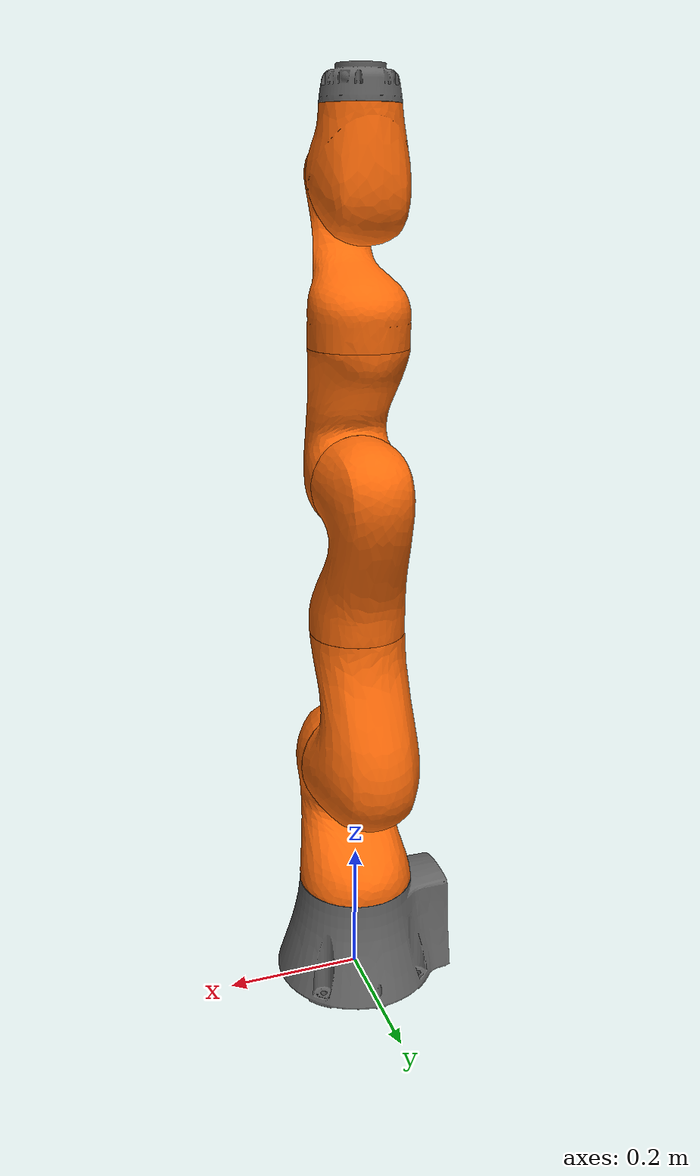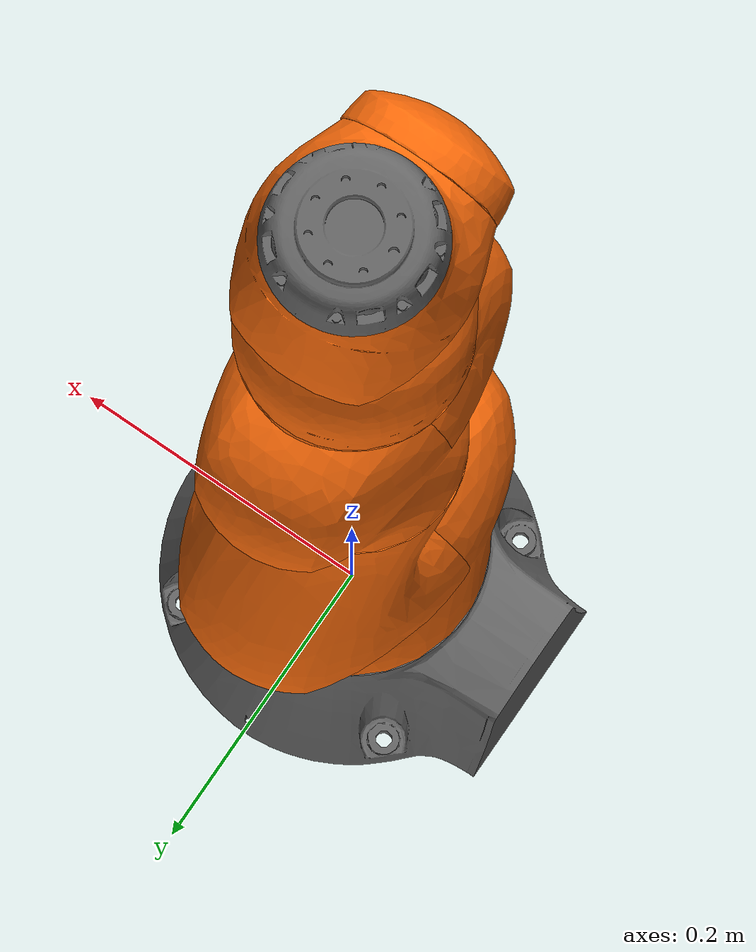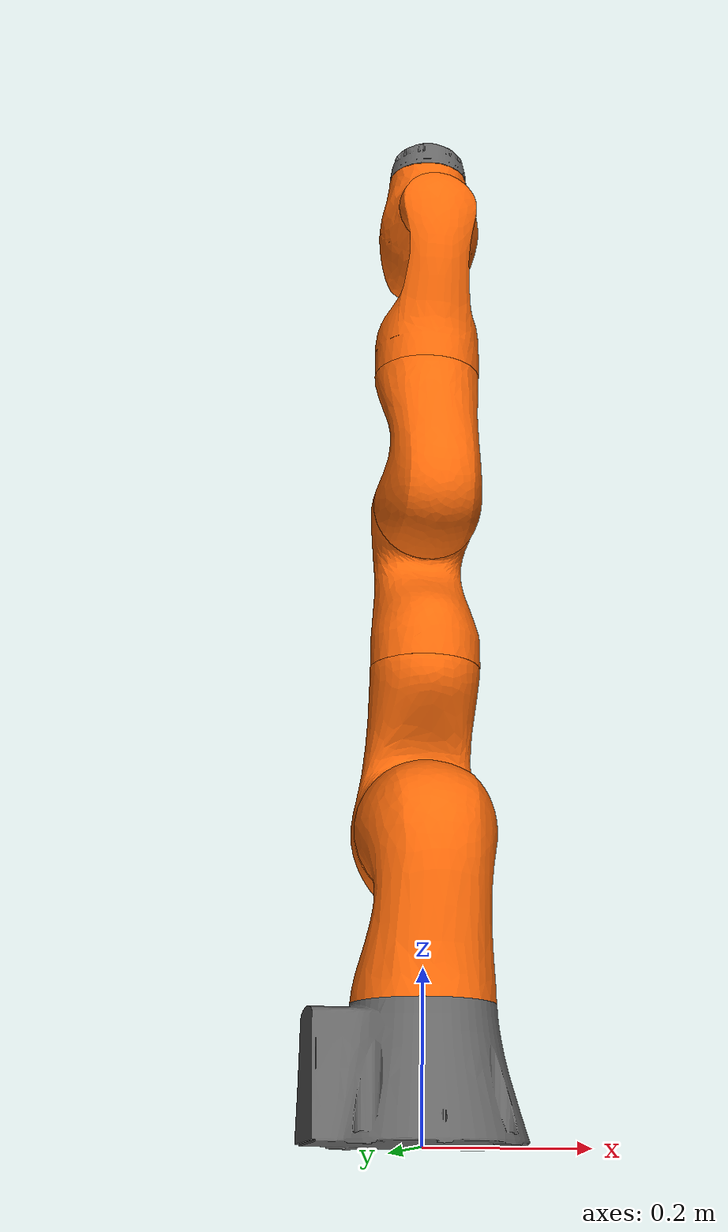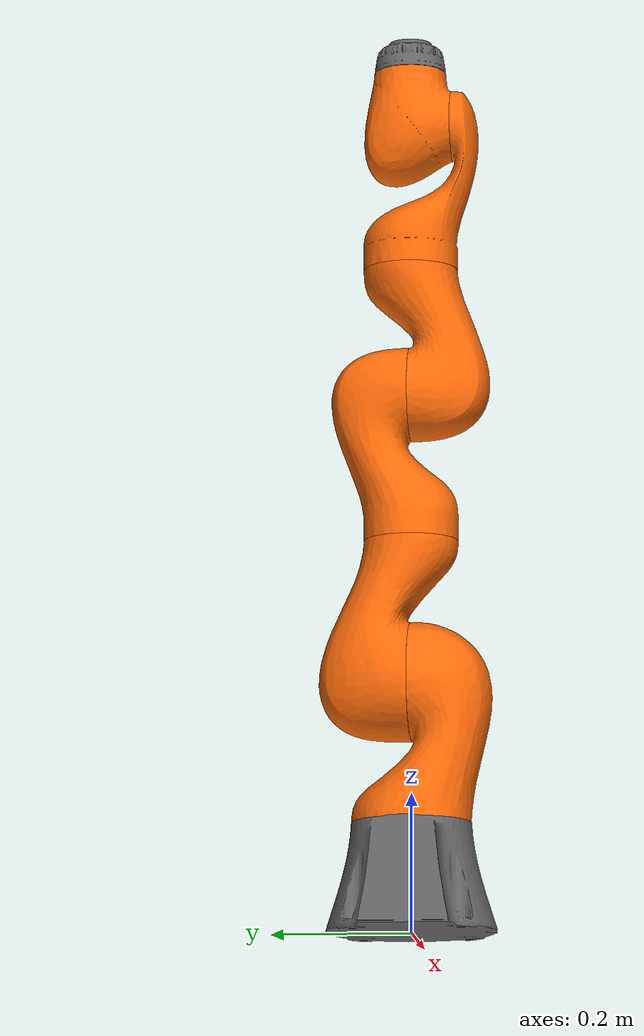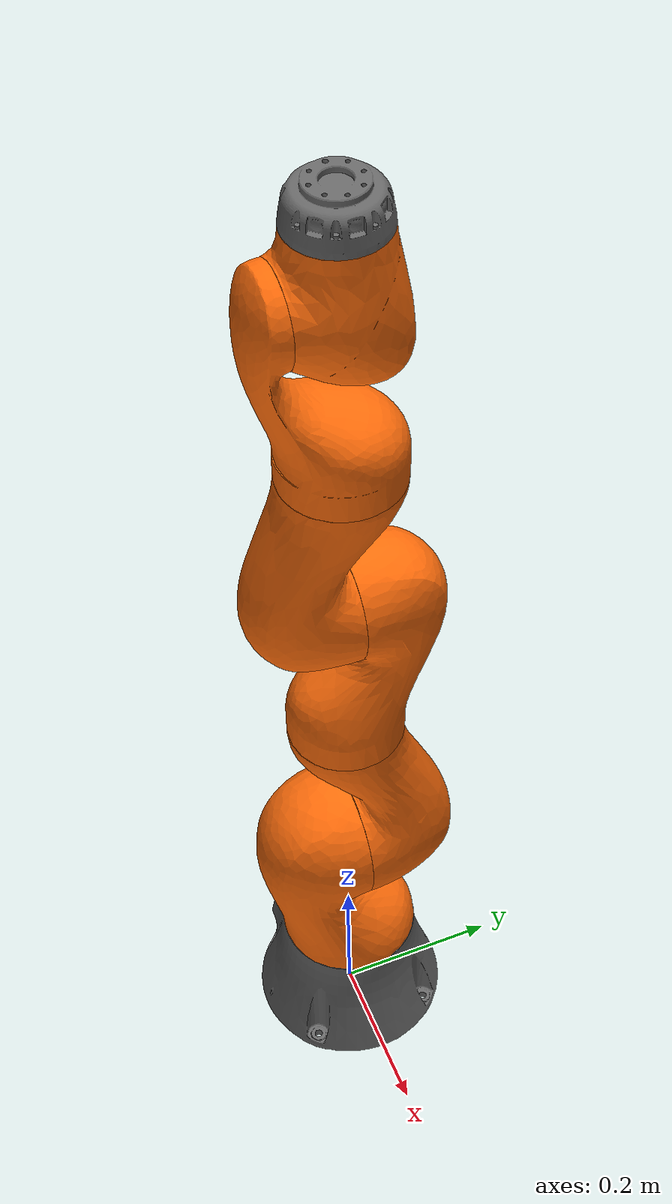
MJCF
<mujoco model="iiwa14">
    <compiler angle="radian" meshdir="../meshes/iiwa14/visual/" />
    <size njmax="500" nconmax="100" />
    <asset>
        <mesh name="link_0" file="link_0.stl" />
        <mesh name="link_1" file="link_1.stl" />
        <mesh name="link_2" file="link_2.stl" />
        <mesh name="link_3" file="link_3.stl" />
        <mesh name="link_4" file="link_4.stl" />
        <mesh name="link_5" file="link_5.stl" />
        <mesh name="link_6" file="link_6.stl" />
        <mesh name="link_7" file="link_7.stl" />
    </asset>
    <worldbody>
        <geom type="mesh" contype="0" conaffinity="0" group="1" rgba="0.4 0.4 0.4 1" mesh="link_0" />
        <geom type="mesh" rgba="0.4 0.4 0.4 1" mesh="link_0" />
        <body name="iiwa_link_1" pos="0 0 0.1575">
            <inertial pos="0 -0.03 0.12" mass="4" diaginertia="0.1 0.09 0.02" />
            <joint name="iiwa_joint_1" pos="0 0 0" axis="0 0 1" limited="true" range="-2.96706 2.96706" damping="0.5" />
            <geom type="mesh" contype="0" conaffinity="0" group="1" rgba="1 0.423529 0.0392157 1" mesh="link_1" />
            <geom type="mesh" rgba="1 0.423529 0.0392157 1" mesh="link_1" />
            <body name="iiwa_link_2" pos="0 0 0.2025" quat="0 0 0.707107 0.707107">
                <inertial pos="0.0003 0.059 0.042" quat="0.707107 0.707107 0 0" mass="4" diaginertia="0.05 0.044 0.018" />
                <joint name="iiwa_joint_2" pos="0 0 0" axis="0 0 1" limited="true" range="-2.0944 2.0944" damping="0.5" />
                <geom type="mesh" contype="0" conaffinity="0" group="1" rgba="1 0.423529 0.0392157 1" mesh="link_2" />
                <geom type="mesh" rgba="1 0.423529 0.0392157 1" mesh="link_2" />
                <body name="iiwa_link_3" pos="0 0.2045 0" quat="0 0 0.707107 0.707107">
                    <inertial pos="0 0.03 0.13" mass="3" diaginertia="0.08 0.075 0.01" />
                    <joint name="iiwa_joint_3" pos="0 0 0" axis="0 0 1" limited="true" range="-2.96706 2.96706" damping="0.5" />
                    <geom type="mesh" contype="0" conaffinity="0" group="1" rgba="1 0.423529 0.0392157 1" mesh="link_3" />
                    <geom type="mesh" rgba="1 0.423529 0.0392157 1" mesh="link_3" />
                    <body name="iiwa_link_4" pos="0 0 0.2155" quat="0.707107 0.707107 0 0">
                        <inertial pos="0 0.067 0.034" quat="0.707107 0.707107 0 0" mass="2.7" diaginertia="0.03 0.029 0.01" />
                        <joint name="iiwa_joint_4" pos="0 0 0" axis="0 0 1" limited="true" range="-2.0944 2.0944" damping="0.5" />
                        <geom type="mesh" contype="0" conaffinity="0" group="1" rgba="1 0.423529 0.0392157 1" mesh="link_4" />
                        <geom type="mesh" rgba="1 0.423529 0.0392157 1" mesh="link_4" />
                        <body name="iiwa_link_5" pos="0 0.1845 0" quat="0 0 0.707107 0.707107">
                            <inertial pos="0.0001 0.021 0.076" mass="1.7" diaginertia="0.02 0.018 0.005" />
                            <joint name="iiwa_joint_5" pos="0 0 0" axis="0 0 1" limited="true" range="-2.96706 2.96706" damping="0.5" />
                            <geom type="mesh" contype="0" conaffinity="0" group="1" rgba="1 0.423529 0.0392157 1" mesh="link_5" />
                            <geom type="mesh" rgba="1 0.423529 0.0392157 1" mesh="link_5" />
                            <body name="iiwa_link_6" pos="0 0 0.2155" quat="0.707107 0.707107 0 0">
                                <inertial pos="0 0.0006 0.0004" quat="0.707107 0.707107 0 0" mass="1.8" diaginertia="0.005 0.0047 0.0036" />
                                <joint name="iiwa_joint_6" pos="0 0 0" axis="0 0 1" limited="true" range="-2.0944 2.0944" damping="0.5" />
                                <geom type="mesh" contype="0" conaffinity="0" group="1" rgba="1 0.423529 0.0392157 1" mesh="link_6" />
                                <geom type="mesh" rgba="1 0.423529 0.0392157 1" mesh="link_6" />
                                <body name="iiwa_link_7" pos="0 0.081 0" quat="0 0 0.707107 0.707107">
                                    <inertial pos="0 0 0.0200001" mass="0.300001" diaginertia="1.001 1.001 1.001" />
                                    <joint name="iiwa_joint_7" pos="0 0 0" axis="0 0 1" limited="true" range="-3.05433 3.05433" damping="0.5" />
                                    <geom type="mesh" contype="0" conaffinity="0" group="1" rgba="0.4 0.4 0.4 1" mesh="link_7" />
                                    <geom type="mesh" rgba="0.4 0.4 0.4 1" mesh="link_7" />
                                </body>
                            </body>
                        </body>
                    </body>
                </body>
            </body>
        </body>
    </worldbody>

    <actuator>

        <motor name="iiwa_joint_1" gear="100" joint="iiwa_joint_1" />
        <motor name="iiwa_joint_2" gear="100" joint="iiwa_joint_2" />
        <motor name="iiwa_joint_3" gear="100" joint="iiwa_joint_3" />
        <motor name="iiwa_joint_4" gear="100" joint="iiwa_joint_4" />
        <motor name="iiwa_joint_5" gear="100" joint="iiwa_joint_5" />
        <motor name="iiwa_joint_6" gear="100" joint="iiwa_joint_6" />
        <motor name="iiwa_joint_7" gear="100" joint="iiwa_joint_7" />
    </actuator>
</mujoco>
